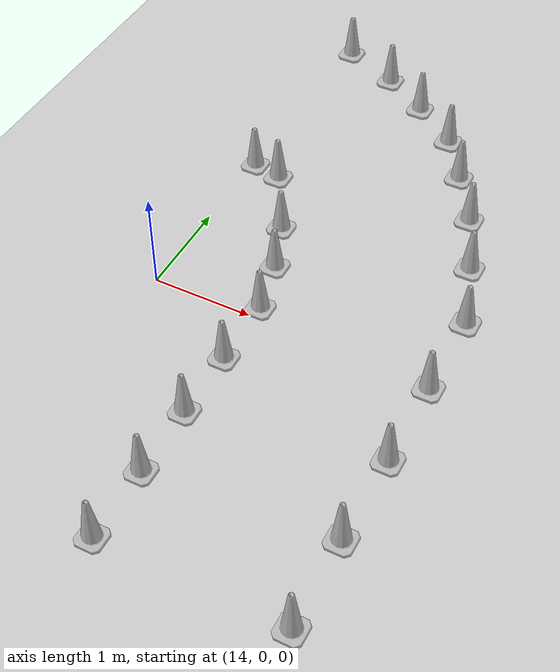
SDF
<sdf version="1.7">
 <world name="default">
  <model name="Construction_Cone_b_22">
   <link name="link">
    <inertial>
     <inertia><ixx>1</ixx><ixy>0</ixy><ixz>0</ixz><iyy>1</iyy><iyz>0</iyz><izz>1</izz></inertia>
     <mass>1</mass>
    </inertial>
    <visual name="visual">
     <geometry>
      <mesh><scale>4.9 4.9 4.5</scale><uri>./construction_cone/meshes/construction_cone_b.dae</uri></mesh>
     </geometry>
     <material><shader type="pixel"/></material>
    </visual>
    <collision name="collision">
     <geometry>
      <mesh><uri>./construction_cone/meshes/construction_cone_b.dae</uri><scale>4.9 4.9 4.5</scale></mesh>
     </geometry>
     <surface>
      <friction>
       <ode><mu>1</mu><mu2>1</mu2><fdir1>0 0 0</fdir1><slip1>0</slip1><slip2>0</slip2></ode>
       <torsional>
        <coefficient>1</coefficient>
        <patch_radius>0</patch_radius>
        <surface_radius>0</surface_radius>
        <use_patch_radius>1</use_patch_radius>
        <ode><slip>0</slip></ode>
       </torsional>
      </friction>
      <bounce><restitution_coefficient>0</restitution_coefficient><threshold>1e+06</threshold></bounce>
      <contact>
       <collide_without_contact>0</collide_without_contact>
       <collide_without_contact_bitmask>1</collide_without_contact_bitmask>
       <collide_bitmask>1</collide_bitmask>
       <ode>
        <soft_cfm>0</soft_cfm>
        <soft_erp>0.2</soft_erp>
        <kp>1e+13</kp>
        <kd>1</kd>
        <max_vel>0.01</max_vel>
        <min_depth>0</min_depth>
       </ode>
       <bullet>
        <split_impulse>1</split_impulse>
        <split_impulse_penetration_threshold>-0.01</split_impulse_penetration_threshold>
        <soft_cfm>0</soft_cfm>
        <soft_erp>0.2</soft_erp>
        <kp>1e+13</kp>
        <kd>1</kd>
       </bullet>
      </contact>
     </surface>
    </collision>
   </link>
   <static>0</static>
   <pose>14.0938 1.79114 0.1 0 0 0</pose>
  </model>
  <model name="Construction_Cone_b_23">
   <link name="link">
    <inertial>
     <inertia><ixx>1</ixx><ixy>0</ixy><ixz>0</ixz><iyy>1</iyy><iyz>0</iyz><izz>1</izz></inertia>
     <mass>1</mass>
    </inertial>
    <visual name="visual">
     <geometry>
      <mesh><scale>4.9 4.9 4.5</scale><uri>./construction_cone/meshes/construction_cone_b.dae</uri></mesh>
     </geometry>
     <material><shader type="pixel"/></material>
    </visual>
    <collision name="collision">
     <geometry>
      <mesh><uri>./construction_cone/meshes/construction_cone_b.dae</uri><scale>4.9 4.9 4.5</scale></mesh>
     </geometry>
     <surface>
      <friction>
       <ode><mu>1</mu><mu2>1</mu2><fdir1>0 0 0</fdir1><slip1>0</slip1><slip2>0</slip2></ode>
       <torsional>
        <coefficient>1</coefficient>
        <patch_radius>0</patch_radius>
        <surface_radius>0</surface_radius>
        <use_patch_radius>1</use_patch_radius>
        <ode><slip>0</slip></ode>
       </torsional>
      </friction>
      <bounce><restitution_coefficient>0</restitution_coefficient><threshold>1e+06</threshold></bounce>
      <contact>
       <collide_without_contact>0</collide_without_contact>
       <collide_without_contact_bitmask>1</collide_without_contact_bitmask>
       <collide_bitmask>1</collide_bitmask>
       <ode>
        <soft_cfm>0</soft_cfm>
        <soft_erp>0.2</soft_erp>
        <kp>1e+13</kp>
        <kd>1</kd>
        <max_vel>0.01</max_vel>
        <min_depth>0</min_depth>
       </ode>
       <bullet>
        <split_impulse>1</split_impulse>
        <split_impulse_penetration_threshold>-0.01</split_impulse_penetration_threshold>
        <soft_cfm>0</soft_cfm>
        <soft_erp>0.2</soft_erp>
        <kp>1e+13</kp>
        <kd>1</kd>
       </bullet>
      </contact>
     </surface>
    </collision>
   </link>
   <static>0</static>
   <pose>14.7718 1.07394 0.1 0 0 0</pose>
  </model>
  <model name="Construction_Cone_b_24">
   <link name="link">
    <inertial>
     <inertia><ixx>1</ixx><ixy>0</ixy><ixz>0</ixz><iyy>1</iyy><iyz>0</iyz><izz>1</izz></inertia>
     <mass>1</mass>
    </inertial>
    <visual name="visual">
     <geometry>
      <mesh><scale>4.9 4.9 4.5</scale><uri>./construction_cone/meshes/construction_cone_b.dae</uri></mesh>
     </geometry>
     <material><shader type="pixel"/></material>
    </visual>
    <collision name="collision">
     <geometry>
      <mesh><uri>./construction_cone/meshes/construction_cone_b.dae</uri><scale>4.9 4.9 4.5</scale></mesh>
     </geometry>
     <surface>
      <friction>
       <ode><mu>1</mu><mu2>1</mu2><fdir1>0 0 0</fdir1><slip1>0</slip1><slip2>0</slip2></ode>
       <torsional>
        <coefficient>1</coefficient>
        <patch_radius>0</patch_radius>
        <surface_radius>0</surface_radius>
        <use_patch_radius>1</use_patch_radius>
        <ode><slip>0</slip></ode>
       </torsional>
      </friction>
      <bounce><restitution_coefficient>0</restitution_coefficient><threshold>1e+06</threshold></bounce>
      <contact>
       <collide_without_contact>0</collide_without_contact>
       <collide_without_contact_bitmask>1</collide_without_contact_bitmask>
       <collide_bitmask>1</collide_bitmask>
       <ode>
        <soft_cfm>0</soft_cfm>
        <soft_erp>0.2</soft_erp>
        <kp>1e+13</kp>
        <kd>1</kd>
        <max_vel>0.01</max_vel>
        <min_depth>0</min_depth>
       </ode>
       <bullet>
        <split_impulse>1</split_impulse>
        <split_impulse_penetration_threshold>-0.01</split_impulse_penetration_threshold>
        <soft_cfm>0</soft_cfm>
        <soft_erp>0.2</soft_erp>
        <kp>1e+13</kp>
        <kd>1</kd>
       </bullet>
      </contact>
     </surface>
    </collision>
   </link>
   <static>0</static>
   <pose>14.9668 0.57247 0.1 0 0 0</pose>
  </model>
  <model name="Construction_Cone_b_25">
   <link name="link">
    <inertial>
     <inertia><ixx>1</ixx><ixy>0</ixy><ixz>0</ixz><iyy>1</iyy><iyz>0</iyz><izz>1</izz></inertia>
     <mass>1</mass>
    </inertial>
    <visual name="visual">
     <geometry>
      <mesh><scale>4.9 4.9 4.5</scale><uri>./construction_cone/meshes/construction_cone_b.dae</uri></mesh>
     </geometry>
     <material><shader type="pixel"/></material>
    </visual>
    <collision name="collision">
     <geometry>
      <mesh><uri>./construction_cone/meshes/construction_cone_b.dae</uri><scale>4.9 4.9 4.5</scale></mesh>
     </geometry>
     <surface>
      <friction>
       <ode><mu>1</mu><mu2>1</mu2><fdir1>0 0 0</fdir1><slip1>0</slip1><slip2>0</slip2></ode>
       <torsional>
        <coefficient>1</coefficient>
        <patch_radius>0</patch_radius>
        <surface_radius>0</surface_radius>
        <use_patch_radius>1</use_patch_radius>
        <ode><slip>0</slip></ode>
       </torsional>
      </friction>
      <bounce><restitution_coefficient>0</restitution_coefficient><threshold>1e+06</threshold></bounce>
      <contact>
       <collide_without_contact>0</collide_without_contact>
       <collide_without_contact_bitmask>1</collide_without_contact_bitmask>
       <collide_bitmask>1</collide_bitmask>
       <ode>
        <soft_cfm>0</soft_cfm>
        <soft_erp>0.2</soft_erp>
        <kp>1e+13</kp>
        <kd>1</kd>
        <max_vel>0.01</max_vel>
        <min_depth>0</min_depth>
       </ode>
       <bullet>
        <split_impulse>1</split_impulse>
        <split_impulse_penetration_threshold>-0.01</split_impulse_penetration_threshold>
        <soft_cfm>0</soft_cfm>
        <soft_erp>0.2</soft_erp>
        <kp>1e+13</kp>
        <kd>1</kd>
       </bullet>
      </contact>
     </surface>
    </collision>
   </link>
   <static>0</static>
   <pose>15.0998 0.038206 0.1 0 0 0</pose>
  </model>
  <model name="Construction_Cone_b_26">
   <link name="link">
    <inertial>
     <inertia><ixx>1</ixx><ixy>0</ixy><ixz>0</ixz><iyy>1</iyy><iyz>0</iyz><izz>1</izz></inertia>
     <mass>1</mass>
    </inertial>
    <visual name="visual">
     <geometry>
      <mesh><scale>4.9 4.9 4.5</scale><uri>./construction_cone/meshes/construction_cone_b.dae</uri></mesh>
     </geometry>
     <material><shader type="pixel"/></material>
    </visual>
    <collision name="collision">
     <geometry>
      <mesh><uri>./construction_cone/meshes/construction_cone_b.dae</uri><scale>4.9 4.9 4.5</scale></mesh>
     </geometry>
     <surface>
      <friction>
       <ode><mu>1</mu><mu2>1</mu2><fdir1>0 0 0</fdir1><slip1>0</slip1><slip2>0</slip2></ode>
       <torsional>
        <coefficient>1</coefficient>
        <patch_radius>0</patch_radius>
        <surface_radius>0</surface_radius>
        <use_patch_radius>1</use_patch_radius>
        <ode><slip>0</slip></ode>
       </torsional>
      </friction>
      <bounce><restitution_coefficient>0</restitution_coefficient><threshold>1e+06</threshold></bounce>
      <contact>
       <collide_without_contact>0</collide_without_contact>
       <collide_without_contact_bitmask>1</collide_without_contact_bitmask>
       <collide_bitmask>1</collide_bitmask>
       <ode>
        <soft_cfm>0</soft_cfm>
        <soft_erp>0.2</soft_erp>
        <kp>1e+13</kp>
        <kd>1</kd>
        <max_vel>0.01</max_vel>
        <min_depth>0</min_depth>
       </ode>
       <bullet>
        <split_impulse>1</split_impulse>
        <split_impulse_penetration_threshold>-0.01</split_impulse_penetration_threshold>
        <soft_cfm>0</soft_cfm>
        <soft_erp>0.2</soft_erp>
        <kp>1e+13</kp>
        <kd>1</kd>
       </bullet>
      </contact>
     </surface>
    </collision>
   </link>
   <static>0</static>
   <pose>15.1026 -0.643535 0.1 0 0 0</pose>
  </model>
  <model name="Construction_Cone_b_27">
   <link name="link">
    <inertial>
     <inertia><ixx>1</ixx><ixy>0</ixy><ixz>0</ixz><iyy>1</iyy><iyz>0</iyz><izz>1</izz></inertia>
     <mass>1</mass>
    </inertial>
    <visual name="visual">
     <geometry>
      <mesh><scale>4.9 4.9 4.5</scale><uri>./construction_cone/meshes/construction_cone_b.dae</uri></mesh>
     </geometry>
     <material><shader type="pixel"/></material>
    </visual>
    <collision name="collision">
     <geometry>
      <mesh><uri>./construction_cone/meshes/construction_cone_b.dae</uri><scale>4.9 4.9 4.5</scale></mesh>
     </geometry>
     <surface>
      <friction>
       <ode><mu>1</mu><mu2>1</mu2><fdir1>0 0 0</fdir1><slip1>0</slip1><slip2>0</slip2></ode>
       <torsional>
        <coefficient>1</coefficient>
        <patch_radius>0</patch_radius>
        <surface_radius>0</surface_radius>
        <use_patch_radius>1</use_patch_radius>
        <ode><slip>0</slip></ode>
       </torsional>
      </friction>
      <bounce><restitution_coefficient>0</restitution_coefficient><threshold>1e+06</threshold></bounce>
      <contact>
       <collide_without_contact>0</collide_without_contact>
       <collide_without_contact_bitmask>1</collide_without_contact_bitmask>
       <collide_bitmask>1</collide_bitmask>
       <ode>
        <soft_cfm>0</soft_cfm>
        <soft_erp>0.2</soft_erp>
        <kp>1e+13</kp>
        <kd>1</kd>
        <max_vel>0.01</max_vel>
        <min_depth>0</min_depth>
       </ode>
       <bullet>
        <split_impulse>1</split_impulse>
        <split_impulse_penetration_threshold>-0.01</split_impulse_penetration_threshold>
        <soft_cfm>0</soft_cfm>
        <soft_erp>0.2</soft_erp>
        <kp>1e+13</kp>
        <kd>1</kd>
       </bullet>
      </contact>
     </surface>
    </collision>
   </link>
   <static>0</static>
   <pose>15.1023 -1.32146 0.1 0 0 0</pose>
  </model>
  <model name="Construction_Cone_b_28">
   <link name="link">
    <inertial>
     <inertia><ixx>1</ixx><ixy>0</ixy><ixz>0</ixz><iyy>1</iyy><iyz>0</iyz><izz>1</izz></inertia>
     <mass>1</mass>
    </inertial>
    <visual name="visual">
     <geometry>
      <mesh><scale>4.9 4.9 4.5</scale><uri>./construction_cone/meshes/construction_cone_b.dae</uri></mesh>
     </geometry>
     <material><shader type="pixel"/></material>
    </visual>
    <collision name="collision">
     <geometry>
      <mesh><uri>./construction_cone/meshes/construction_cone_b.dae</uri><scale>4.9 4.9 4.5</scale></mesh>
     </geometry>
     <surface>
      <friction>
       <ode><mu>1</mu><mu2>1</mu2><fdir1>0 0 0</fdir1><slip1>0</slip1><slip2>0</slip2></ode>
       <torsional>
        <coefficient>1</coefficient>
        <patch_radius>0</patch_radius>
        <surface_radius>0</surface_radius>
        <use_patch_radius>1</use_patch_radius>
        <ode><slip>0</slip></ode>
       </torsional>
      </friction>
      <bounce><restitution_coefficient>0</restitution_coefficient><threshold>1e+06</threshold></bounce>
      <contact>
       <collide_without_contact>0</collide_without_contact>
       <collide_without_contact_bitmask>1</collide_without_contact_bitmask>
       <collide_bitmask>1</collide_bitmask>
       <ode>
        <soft_cfm>0</soft_cfm>
        <soft_erp>0.2</soft_erp>
        <kp>1e+13</kp>
        <kd>1</kd>
        <max_vel>0.01</max_vel>
        <min_depth>0</min_depth>
       </ode>
       <bullet>
        <split_impulse>1</split_impulse>
        <split_impulse_penetration_threshold>-0.01</split_impulse_penetration_threshold>
        <soft_cfm>0</soft_cfm>
        <soft_erp>0.2</soft_erp>
        <kp>1e+13</kp>
        <kd>1</kd>
       </bullet>
      </contact>
     </surface>
    </collision>
   </link>
   <static>0</static>
   <pose>15.1065 -2.01601 0.1 0 0 0</pose>
  </model>
  <model name="Construction_Cone_y_20">
   <link name="link">
    <inertial>
     <pose>0 0 0.1 0 -0 0</pose>
     <inertia><ixx>1</ixx><ixy>0</ixy><ixz>0</ixz><iyy>1</iyy><iyz>0</iyz><izz>1</izz></inertia>
     <mass>1</mass>
    </inertial>
    <pose>0 0 0.1 0 -0 0</pose>
    <visual name="visual">
     <geometry>
      <mesh><scale>4.9 4.9 4.5</scale><uri>./construction_cone/meshes/construction_cone_b.dae</uri></mesh>
     </geometry>
     <material><shader type="pixel"/></material>
     <pose>0 0 0.1 0 -0 0</pose>
    </visual>
    <collision name="collision">
     <pose>0 0 0.1 0 -0 0</pose>
     <geometry>
      <mesh><uri>./construction_cone/meshes/construction_cone_b.dae</uri><scale>4.9 4.9 4.5</scale></mesh>
     </geometry>
     <surface>
      <friction>
       <ode><mu>1</mu><mu2>1</mu2><fdir1>0 0 0</fdir1><slip1>0</slip1><slip2>0</slip2></ode>
       <torsional>
        <coefficient>1</coefficient>
        <patch_radius>0</patch_radius>
        <surface_radius>0</surface_radius>
        <use_patch_radius>1</use_patch_radius>
        <ode><slip>0</slip></ode>
       </torsional>
      </friction>
      <bounce><restitution_coefficient>0</restitution_coefficient><threshold>1e+06</threshold></bounce>
      <contact>
       <collide_without_contact>0</collide_without_contact>
       <collide_without_contact_bitmask>1</collide_without_contact_bitmask>
       <collide_bitmask>1</collide_bitmask>
       <ode>
        <soft_cfm>0</soft_cfm>
        <soft_erp>0.2</soft_erp>
        <kp>1e+13</kp>
        <kd>1</kd>
        <max_vel>0.01</max_vel>
        <min_depth>0</min_depth>
       </ode>
       <bullet>
        <split_impulse>1</split_impulse>
        <split_impulse_penetration_threshold>-0.01</split_impulse_penetration_threshold>
        <soft_cfm>0</soft_cfm>
        <soft_erp>0.2</soft_erp>
        <kp>1e+13</kp>
        <kd>1</kd>
       </bullet>
      </contact>
     </surface>
    </collision>
   </link>
   <static>0</static>
   <pose>14.5046 1.52039 0.1 0 0 0</pose>
  </model>
  <model name="Construction_Cone_y_22">
   <link name="link">
    <inertial>
     <pose>0 0 0.1 0 -0 0</pose>
     <inertia><ixx>1</ixx><ixy>0</ixy><ixz>0</ixz><iyy>1</iyy><iyz>0</iyz><izz>1</izz></inertia>
     <mass>1</mass>
    </inertial>
    <pose>0 0 0.1 0 -0 0</pose>
    <visual name="visual">
     <geometry>
      <mesh><scale>4.9 4.9 4.5</scale><uri>./construction_cone/meshes/construction_cone_y.dae</uri></mesh>
     </geometry>
     <material><shader type="pixel"/></material>
     <pose>0 0 0.1 0 -0 0</pose>
    </visual>
    <collision name="collision">
     <pose>0 0 0.1 0 -0 0</pose>
     <geometry>
      <mesh><uri>./construction_cone/meshes/construction_cone_y.dae</uri><scale>4.9 4.9 4.5</scale></mesh>
     </geometry>
     <surface>
      <friction>
       <ode><mu>1</mu><mu2>1</mu2><fdir1>0 0 0</fdir1><slip1>0</slip1><slip2>0</slip2></ode>
       <torsional>
        <coefficient>1</coefficient>
        <patch_radius>0</patch_radius>
        <surface_radius>0</surface_radius>
        <use_patch_radius>1</use_patch_radius>
        <ode><slip>0</slip></ode>
       </torsional>
      </friction>
      <bounce><restitution_coefficient>0</restitution_coefficient><threshold>1e+06</threshold></bounce>
      <contact>
       <collide_without_contact>0</collide_without_contact>
       <collide_without_contact_bitmask>1</collide_without_contact_bitmask>
       <collide_bitmask>1</collide_bitmask>
       <ode>
        <soft_cfm>0</soft_cfm>
        <soft_erp>0.2</soft_erp>
        <kp>1e+13</kp>
        <kd>1</kd>
        <max_vel>0.01</max_vel>
        <min_depth>0</min_depth>
       </ode>
       <bullet>
        <split_impulse>1</split_impulse>
        <split_impulse_penetration_threshold>-0.01</split_impulse_penetration_threshold>
        <soft_cfm>0</soft_cfm>
        <soft_erp>0.2</soft_erp>
        <kp>1e+13</kp>
        <kd>1</kd>
       </bullet>
      </contact>
     </surface>
    </collision>
   </link>
   <static>0</static>
   <pose>14.256 3.73519 0.1 0 0 0</pose>
  </model>
  <model name="Construction_Cone_y_23">
   <link name="link">
    <inertial>
     <pose>0 0 0.1 0 -0 0</pose>
     <inertia><ixx>1</ixx><ixy>0</ixy><ixz>0</ixz><iyy>1</iyy><iyz>0</iyz><izz>1</izz></inertia>
     <mass>1</mass>
    </inertial>
    <pose>0 0 0.1 0 -0 0</pose>
    <visual name="visual">
     <geometry>
      <mesh><scale>4.9 4.9 4.5</scale><uri>./construction_cone/meshes/construction_cone_y.dae</uri></mesh>
     </geometry>
     <material><shader type="pixel"/></material>
     <pose>0 0 0.1 0 -0 0</pose>
    </visual>
    <collision name="collision">
     <pose>0 0 0.1 0 -0 0</pose>
     <geometry>
      <mesh><uri>./construction_cone/meshes/construction_cone_y.dae</uri><scale>4.9 4.9 4.5</scale></mesh>
     </geometry>
     <surface>
      <friction>
       <ode><mu>1</mu><mu2>1</mu2><fdir1>0 0 0</fdir1><slip1>0</slip1><slip2>0</slip2></ode>
       <torsional>
        <coefficient>1</coefficient>
        <patch_radius>0</patch_radius>
        <surface_radius>0</surface_radius>
        <use_patch_radius>1</use_patch_radius>
        <ode><slip>0</slip></ode>
       </torsional>
      </friction>
      <bounce><restitution_coefficient>0</restitution_coefficient><threshold>1e+06</threshold></bounce>
      <contact>
       <collide_without_contact>0</collide_without_contact>
       <collide_without_contact_bitmask>1</collide_without_contact_bitmask>
       <collide_bitmask>1</collide_bitmask>
       <ode>
        <soft_cfm>0</soft_cfm>
        <soft_erp>0.2</soft_erp>
        <kp>1e+13</kp>
        <kd>1</kd>
        <max_vel>0.01</max_vel>
        <min_depth>0</min_depth>
       </ode>
       <bullet>
        <split_impulse>1</split_impulse>
        <split_impulse_penetration_threshold>-0.01</split_impulse_penetration_threshold>
        <soft_cfm>0</soft_cfm>
        <soft_erp>0.2</soft_erp>
        <kp>1e+13</kp>
        <kd>1</kd>
       </bullet>
      </contact>
     </surface>
    </collision>
   </link>
   <static>0</static>
   <pose>14.8435 3.47262 0.1 0 0 0</pose>
  </model>
  <model name="Construction_Cone_y_26">
   <link name="link">
    <inertial>
     <pose>0 0 0.1 0 -0 0</pose>
     <inertia><ixx>1</ixx><ixy>0</ixy><ixz>0</ixz><iyy>1</iyy><iyz>0</iyz><izz>1</izz></inertia>
     <mass>1</mass>
    </inertial>
    <pose>0 0 0.1 0 -0 0</pose>
    <visual name="visual">
     <geometry>
      <mesh><scale>4.9 4.9 4.5</scale><uri>./construction_cone/meshes/construction_cone_y.dae</uri></mesh>
     </geometry>
     <material><shader type="pixel"/></material>
     <pose>0 0 0.1 0 -0 0</pose>
    </visual>
    <collision name="collision">
     <pose>0 0 0.1 0 -0 0</pose>
     <geometry>
      <mesh><uri>./construction_cone/meshes/construction_cone_y.dae</uri><scale>4.9 4.9 4.5</scale></mesh>
     </geometry>
     <surface>
      <friction>
       <ode><mu>1</mu><mu2>1</mu2><fdir1>0 0 0</fdir1><slip1>0</slip1><slip2>0</slip2></ode>
       <torsional>
        <coefficient>1</coefficient>
        <patch_radius>0</patch_radius>
        <surface_radius>0</surface_radius>
        <use_patch_radius>1</use_patch_radius>
        <ode><slip>0</slip></ode>
       </torsional>
      </friction>
      <bounce><restitution_coefficient>0</restitution_coefficient><threshold>1e+06</threshold></bounce>
      <contact>
       <collide_without_contact>0</collide_without_contact>
       <collide_without_contact_bitmask>1</collide_without_contact_bitmask>
       <collide_bitmask>1</collide_bitmask>
       <ode>
        <soft_cfm>0</soft_cfm>
        <soft_erp>0.2</soft_erp>
        <kp>1e+13</kp>
        <kd>1</kd>
        <max_vel>0.01</max_vel>
        <min_depth>0</min_depth>
       </ode>
       <bullet>
        <split_impulse>1</split_impulse>
        <split_impulse_penetration_threshold>-0.01</split_impulse_penetration_threshold>
        <soft_cfm>0</soft_cfm>
        <soft_erp>0.2</soft_erp>
        <kp>1e+13</kp>
        <kd>1</kd>
       </bullet>
      </contact>
     </surface>
    </collision>
   </link>
   <static>0</static>
   <pose>16.1063 2.32555 0.1 0 0 0</pose>
  </model>
  <model name="Construction_Cone_y_27">
   <link name="link">
    <inertial>
     <pose>0 0 0.1 0 -0 0</pose>
     <inertia><ixx>1</ixx><ixy>0</ixy><ixz>0</ixz><iyy>1</iyy><iyz>0</iyz><izz>1</izz></inertia>
     <mass>1</mass>
    </inertial>
    <pose>0 0 0.1 0 -0 0</pose>
    <visual name="visual">
     <geometry>
      <mesh><scale>4.9 4.9 4.5</scale><uri>./construction_cone/meshes/construction_cone_y.dae</uri></mesh>
     </geometry>
     <material><shader type="pixel"/></material>
     <pose>0 0 0.1 0 -0 0</pose>
    </visual>
    <collision name="collision">
     <pose>0 0 0.1 0 -0 0</pose>
     <geometry>
      <mesh><uri>./construction_cone/meshes/construction_cone_y.dae</uri><scale>4.9 4.9 4.5</scale></mesh>
     </geometry>
     <surface>
      <friction>
       <ode><mu>1</mu><mu2>1</mu2><fdir1>0 0 0</fdir1><slip1>0</slip1><slip2>0</slip2></ode>
       <torsional>
        <coefficient>1</coefficient>
        <patch_radius>0</patch_radius>
        <surface_radius>0</surface_radius>
        <use_patch_radius>1</use_patch_radius>
        <ode><slip>0</slip></ode>
       </torsional>
      </friction>
      <bounce><restitution_coefficient>0</restitution_coefficient><threshold>1e+06</threshold></bounce>
      <contact>
       <collide_without_contact>0</collide_without_contact>
       <collide_without_contact_bitmask>1</collide_without_contact_bitmask>
       <collide_bitmask>1</collide_bitmask>
       <ode>
        <soft_cfm>0</soft_cfm>
        <soft_erp>0.2</soft_erp>
        <kp>1e+13</kp>
        <kd>1</kd>
        <max_vel>0.01</max_vel>
        <min_depth>0</min_depth>
       </ode>
       <bullet>
        <split_impulse>1</split_impulse>
        <split_impulse_penetration_threshold>-0.01</split_impulse_penetration_threshold>
        <soft_cfm>0</soft_cfm>
        <soft_erp>0.2</soft_erp>
        <kp>1e+13</kp>
        <kd>1</kd>
       </bullet>
      </contact>
     </surface>
    </collision>
   </link>
   <static>0</static>
   <pose>16.4274 1.79772 0.1 0 0 0</pose>
  </model>
  <model name="Construction_Cone_y_28">
   <link name="link">
    <inertial>
     <pose>0 0 0.1 0 -0 0</pose>
     <inertia><ixx>1</ixx><ixy>0</ixy><ixz>0</ixz><iyy>1</iyy><iyz>0</iyz><izz>1</izz></inertia>
     <mass>1</mass>
    </inertial>
    <pose>0 0 0.1 0 -0 0</pose>
    <visual name="visual">
     <geometry>
      <mesh><scale>4.9 4.9 4.5</scale><uri>./construction_cone/meshes/construction_cone_y.dae</uri></mesh>
     </geometry>
     <material><shader type="pixel"/></material>
     <pose>0 0 0.1 0 -0 0</pose>
    </visual>
    <collision name="collision">
     <pose>0 0 0.1 0 -0 0</pose>
     <geometry>
      <mesh><uri>./construction_cone/meshes/construction_cone_y.dae</uri><scale>4.9 4.9 4.5</scale></mesh>
     </geometry>
     <surface>
      <friction>
       <ode><mu>1</mu><mu2>1</mu2><fdir1>0 0 0</fdir1><slip1>0</slip1><slip2>0</slip2></ode>
       <torsional>
        <coefficient>1</coefficient>
        <patch_radius>0</patch_radius>
        <surface_radius>0</surface_radius>
        <use_patch_radius>1</use_patch_radius>
        <ode><slip>0</slip></ode>
       </torsional>
      </friction>
      <bounce><restitution_coefficient>0</restitution_coefficient><threshold>1e+06</threshold></bounce>
      <contact>
       <collide_without_contact>0</collide_without_contact>
       <collide_without_contact_bitmask>1</collide_without_contact_bitmask>
       <collide_bitmask>1</collide_bitmask>
       <ode>
        <soft_cfm>0</soft_cfm>
        <soft_erp>0.2</soft_erp>
        <kp>1e+13</kp>
        <kd>1</kd>
        <max_vel>0.01</max_vel>
        <min_depth>0</min_depth>
       </ode>
       <bullet>
        <split_impulse>1</split_impulse>
        <split_impulse_penetration_threshold>-0.01</split_impulse_penetration_threshold>
        <soft_cfm>0</soft_cfm>
        <soft_erp>0.2</soft_erp>
        <kp>1e+13</kp>
        <kd>1</kd>
       </bullet>
      </contact>
     </surface>
    </collision>
   </link>
   <static>0</static>
   <pose>16.6778 1.18507 0.1 0 0 0</pose>
  </model>
  <model name="Construction_Cone_y_29">
   <link name="link">
    <inertial>
     <pose>0 0 0.1 0 -0 0</pose>
     <inertia><ixx>1</ixx><ixy>0</ixy><ixz>0</ixz><iyy>1</iyy><iyz>0</iyz><izz>1</izz></inertia>
     <mass>1</mass>
    </inertial>
    <pose>0 0 0.1 0 -0 0</pose>
    <visual name="visual">
     <geometry>
      <mesh><scale>4.9 4.9 4.5</scale><uri>./construction_cone/meshes/construction_cone_y.dae</uri></mesh>
     </geometry>
     <material><shader type="pixel"/></material>
     <pose>0 0 0.1 0 -0 0</pose>
    </visual>
    <collision name="collision">
     <pose>0 0 0.1 0 -0 0</pose>
     <geometry>
      <mesh><uri>./construction_cone/meshes/construction_cone_y.dae</uri><scale>4.9 4.9 4.5</scale></mesh>
     </geometry>
     <surface>
      <friction>
       <ode><mu>1</mu><mu2>1</mu2><fdir1>0 0 0</fdir1><slip1>0</slip1><slip2>0</slip2></ode>
       <torsional>
        <coefficient>1</coefficient>
        <patch_radius>0</patch_radius>
        <surface_radius>0</surface_radius>
        <use_patch_radius>1</use_patch_radius>
        <ode><slip>0</slip></ode>
       </torsional>
      </friction>
      <bounce><restitution_coefficient>0</restitution_coefficient><threshold>1e+06</threshold></bounce>
      <contact>
       <collide_without_contact>0</collide_without_contact>
       <collide_without_contact_bitmask>1</collide_without_contact_bitmask>
       <collide_bitmask>1</collide_bitmask>
       <ode>
        <soft_cfm>0</soft_cfm>
        <soft_erp>0.2</soft_erp>
        <kp>1e+13</kp>
        <kd>1</kd>
        <max_vel>0.01</max_vel>
        <min_depth>0</min_depth>
       </ode>
       <bullet>
        <split_impulse>1</split_impulse>
        <split_impulse_penetration_threshold>-0.01</split_impulse_penetration_threshold>
        <soft_cfm>0</soft_cfm>
        <soft_erp>0.2</soft_erp>
        <kp>1e+13</kp>
        <kd>1</kd>
       </bullet>
      </contact>
     </surface>
    </collision>
   </link>
   <static>0</static>
   <pose>16.902 0.532254 0.1 0 0 0</pose>
  </model>
  <model name="Construction_Cone_y_30">
   <link name="link">
    <inertial>
     <pose>0 0 0.1 0 -0 0</pose>
     <inertia><ixx>1</ixx><ixy>0</ixy><ixz>0</ixz><iyy>1</iyy><iyz>0</iyz><izz>1</izz></inertia>
     <mass>1</mass>
    </inertial>
    <pose>0 0 0.1 0 -0 0</pose>
    <visual name="visual">
     <geometry>
      <mesh><scale>4.9 4.9 4.5</scale><uri>./construction_cone/meshes/construction_cone_y.dae</uri></mesh>
     </geometry>
     <material><shader type="pixel"/></material>
     <pose>0 0 0.1 0 -0 0</pose>
    </visual>
    <collision name="collision">
     <pose>0 0 0.1 0 -0 0</pose>
     <geometry>
      <mesh><uri>./construction_cone/meshes/construction_cone_y.dae</uri><scale>4.9 4.9 4.5</scale></mesh>
     </geometry>
     <surface>
      <friction>
       <ode><mu>1</mu><mu2>1</mu2><fdir1>0 0 0</fdir1><slip1>0</slip1><slip2>0</slip2></ode>
       <torsional>
        <coefficient>1</coefficient>
        <patch_radius>0</patch_radius>
        <surface_radius>0</surface_radius>
        <use_patch_radius>1</use_patch_radius>
        <ode><slip>0</slip></ode>
       </torsional>
      </friction>
      <bounce><restitution_coefficient>0</restitution_coefficient><threshold>1e+06</threshold></bounce>
      <contact>
       <collide_without_contact>0</collide_without_contact>
       <collide_without_contact_bitmask>1</collide_without_contact_bitmask>
       <collide_bitmask>1</collide_bitmask>
       <ode>
        <soft_cfm>0</soft_cfm>
        <soft_erp>0.2</soft_erp>
        <kp>1e+13</kp>
        <kd>1</kd>
        <max_vel>0.01</max_vel>
        <min_depth>0</min_depth>
       </ode>
       <bullet>
        <split_impulse>1</split_impulse>
        <split_impulse_penetration_threshold>-0.01</split_impulse_penetration_threshold>
        <soft_cfm>0</soft_cfm>
        <soft_erp>0.2</soft_erp>
        <kp>1e+13</kp>
        <kd>1</kd>
       </bullet>
      </contact>
     </surface>
    </collision>
   </link>
   <static>0</static>
   <pose>16.9048 -0.304297 0.1 0 0 0</pose>
  </model>
  <model name="Construction_Cone_y_31">
   <link name="link">
    <inertial>
     <pose>0 0 0.1 0 -0 0</pose>
     <inertia><ixx>1</ixx><ixy>0</ixy><ixz>0</ixz><iyy>1</iyy><iyz>0</iyz><izz>1</izz></inertia>
     <mass>1</mass>
    </inertial>
    <pose>0 0 0.1 0 -0 0</pose>
    <visual name="visual">
     <geometry>
      <mesh><scale>4.9 4.9 4.5</scale><uri>./construction_cone/meshes/construction_cone_y.dae</uri></mesh>
     </geometry>
     <material><shader type="pixel"/></material>
     <pose>0 0 0.1 0 -0 0</pose>
    </visual>
    <collision name="collision">
     <pose>0 0 0.1 0 -0 0</pose>
     <geometry>
      <mesh><uri>./construction_cone/meshes/construction_cone_y.dae</uri><scale>4.9 4.9 4.5</scale></mesh>
     </geometry>
     <surface>
      <friction>
       <ode><mu>1</mu><mu2>1</mu2><fdir1>0 0 0</fdir1><slip1>0</slip1><slip2>0</slip2></ode>
       <torsional>
        <coefficient>1</coefficient>
        <patch_radius>0</patch_radius>
        <surface_radius>0</surface_radius>
        <use_patch_radius>1</use_patch_radius>
        <ode><slip>0</slip></ode>
       </torsional>
      </friction>
      <bounce><restitution_coefficient>0</restitution_coefficient><threshold>1e+06</threshold></bounce>
      <contact>
       <collide_without_contact>0</collide_without_contact>
       <collide_without_contact_bitmask>1</collide_without_contact_bitmask>
       <collide_bitmask>1</collide_bitmask>
       <ode>
        <soft_cfm>0</soft_cfm>
        <soft_erp>0.2</soft_erp>
        <kp>1e+13</kp>
        <kd>1</kd>
        <max_vel>0.01</max_vel>
        <min_depth>0</min_depth>
       </ode>
       <bullet>
        <split_impulse>1</split_impulse>
        <split_impulse_penetration_threshold>-0.01</split_impulse_penetration_threshold>
        <soft_cfm>0</soft_cfm>
        <soft_erp>0.2</soft_erp>
        <kp>1e+13</kp>
        <kd>1</kd>
       </bullet>
      </contact>
     </surface>
    </collision>
   </link>
   <static>0</static>
   <pose>16.9102 -1.14241 0.1 0 0 0</pose>
  </model>
  <model name="Construction_Cone_y_32">
   <link name="link">
    <inertial>
     <pose>0 0 0.1 0 -0 0</pose>
     <inertia><ixx>1</ixx><ixy>0</ixy><ixz>0</ixz><iyy>1</iyy><iyz>0</iyz><izz>1</izz></inertia>
     <mass>1</mass>
    </inertial>
    <pose>0 0 0.1 0 -0 0</pose>
    <visual name="visual">
     <geometry>
      <mesh><scale>4.9 4.9 4.5</scale><uri>./construction_cone/meshes/construction_cone_y.dae</uri></mesh>
     </geometry>
     <material><shader type="pixel"/></material>
     <pose>0 0 0.1 0 -0 0</pose>
    </visual>
    <collision name="collision">
     <pose>0 0 0.1 0 -0 0</pose>
     <geometry>
      <mesh><uri>./construction_cone/meshes/construction_cone_y.dae</uri><scale>4.9 4.9 4.5</scale></mesh>
     </geometry>
     <surface>
      <friction>
       <ode><mu>1</mu><mu2>1</mu2><fdir1>0 0 0</fdir1><slip1>0</slip1><slip2>0</slip2></ode>
       <torsional>
        <coefficient>1</coefficient>
        <patch_radius>0</patch_radius>
        <surface_radius>0</surface_radius>
        <use_patch_radius>1</use_patch_radius>
        <ode><slip>0</slip></ode>
       </torsional>
      </friction>
      <bounce><restitution_coefficient>0</restitution_coefficient><threshold>1e+06</threshold></bounce>
      <contact>
       <collide_without_contact>0</collide_without_contact>
       <collide_without_contact_bitmask>1</collide_without_contact_bitmask>
       <collide_bitmask>1</collide_bitmask>
       <ode>
        <soft_cfm>0</soft_cfm>
        <soft_erp>0.2</soft_erp>
        <kp>1e+13</kp>
        <kd>1</kd>
        <max_vel>0.01</max_vel>
        <min_depth>0</min_depth>
       </ode>
       <bullet>
        <split_impulse>1</split_impulse>
        <split_impulse_penetration_threshold>-0.01</split_impulse_penetration_threshold>
        <soft_cfm>0</soft_cfm>
        <soft_erp>0.2</soft_erp>
        <kp>1e+13</kp>
        <kd>1</kd>
       </bullet>
      </contact>
     </surface>
    </collision>
   </link>
   <static>0</static>
   <pose>16.9002 -1.98138 0.1 0 0 0</pose>
  </model>
  <model name="Construction_Cone_y_33">
   <link name="link">
    <inertial>
     <pose>0 0 0.1 0 -0 0</pose>
     <inertia><ixx>1</ixx><ixy>0</ixy><ixz>0</ixz><iyy>1</iyy><iyz>0</iyz><izz>1</izz></inertia>
     <mass>1</mass>
    </inertial>
    <pose>0 0 0.1 0 -0 0</pose>
    <visual name="visual">
     <geometry>
      <mesh><scale>4.9 4.9 4.5</scale><uri>./construction_cone/meshes/construction_cone_y.dae</uri></mesh>
     </geometry>
     <material><shader type="pixel"/></material>
     <pose>0 0 0.1 0 -0 0</pose>
    </visual>
    <collision name="collision">
     <pose>0 0 0.1 0 -0 0</pose>
     <geometry>
      <mesh><uri>./construction_cone/meshes/construction_cone_y.dae</uri><scale>4.9 4.9 4.5</scale></mesh>
     </geometry>
     <surface>
      <friction>
       <ode><mu>1</mu><mu2>1</mu2><fdir1>0 0 0</fdir1><slip1>0</slip1><slip2>0</slip2></ode>
       <torsional>
        <coefficient>1</coefficient>
        <patch_radius>0</patch_radius>
        <surface_radius>0</surface_radius>
        <use_patch_radius>1</use_patch_radius>
        <ode><slip>0</slip></ode>
       </torsional>
      </friction>
      <bounce><restitution_coefficient>0</restitution_coefficient><threshold>1e+06</threshold></bounce>
      <contact>
       <collide_without_contact>0</collide_without_contact>
       <collide_without_contact_bitmask>1</collide_without_contact_bitmask>
       <collide_bitmask>1</collide_bitmask>
       <ode>
        <soft_cfm>0</soft_cfm>
        <soft_erp>0.2</soft_erp>
        <kp>1e+13</kp>
        <kd>1</kd>
        <max_vel>0.01</max_vel>
        <min_depth>0</min_depth>
       </ode>
       <bullet>
        <split_impulse>1</split_impulse>
        <split_impulse_penetration_threshold>-0.01</split_impulse_penetration_threshold>
        <soft_cfm>0</soft_cfm>
        <soft_erp>0.2</soft_erp>
        <kp>1e+13</kp>
        <kd>1</kd>
       </bullet>
      </contact>
     </surface>
    </collision>
   </link>
   <static>0</static>
   <pose>16.9088 -2.81986 0.1 0 0 0</pose>
  </model>
  <model name="Construction_Cone_y_145">
   <link name="link">
    <inertial>
     <pose>0 0 0.1 0 -0 0</pose>
     <inertia><ixx>1</ixx><ixy>0</ixy><ixz>0</ixz><iyy>1</iyy><iyz>0</iyz><izz>1</izz></inertia>
     <mass>1</mass>
    </inertial>
    <pose>0 0 0.1 0 -0 0</pose>
    <visual name="visual">
     <geometry>
      <mesh><scale>4.9 4.9 4.5</scale><uri>./construction_cone/meshes/construction_cone_y.dae</uri></mesh>
     </geometry>
     <material><shader type="pixel"/></material>
     <pose>0 0 0.1 0 -0 0</pose>
    </visual>
    <collision name="collision">
     <pose>0 0 0.1 0 -0 0</pose>
     <geometry>
      <mesh><uri>./construction_cone/meshes/construction_cone_y.dae</uri><scale>4.9 4.9 4.5</scale></mesh>
     </geometry>
     <surface>
      <friction>
       <ode><mu>1</mu><mu2>1</mu2><fdir1>0 0 0</fdir1><slip1>0</slip1><slip2>0</slip2></ode>
       <torsional>
        <coefficient>1</coefficient>
        <patch_radius>0</patch_radius>
        <surface_radius>0</surface_radius>
        <use_patch_radius>1</use_patch_radius>
        <ode><slip>0</slip></ode>
       </torsional>
      </friction>
      <bounce><restitution_coefficient>0</restitution_coefficient><threshold>1e+06</threshold></bounce>
      <contact>
       <collide_without_contact>0</collide_without_contact>
       <collide_without_contact_bitmask>1</collide_without_contact_bitmask>
       <collide_bitmask>1</collide_bitmask>
       <ode>
        <soft_cfm>0</soft_cfm>
        <soft_erp>0.2</soft_erp>
        <kp>1e+13</kp>
        <kd>1</kd>
        <max_vel>0.01</max_vel>
        <min_depth>0</min_depth>
       </ode>
       <bullet>
        <split_impulse>1</split_impulse>
        <split_impulse_penetration_threshold>-0.01</split_impulse_penetration_threshold>
        <soft_cfm>0</soft_cfm>
        <soft_erp>0.2</soft_erp>
        <kp>1e+13</kp>
        <kd>1</kd>
       </bullet>
      </contact>
     </surface>
    </collision>
   </link>
   <static>0</static>
   <pose>15.3247 3.16501 0.1 0 0 0</pose>
  </model>
  <model name="Construction_Cone_y_146">
   <link name="link">
    <inertial>
     <pose>0 0 0.1 0 -0 0</pose>
     <inertia><ixx>1</ixx><ixy>0</ixy><ixz>0</ixz><iyy>1</iyy><iyz>0</iyz><izz>1</izz></inertia>
     <mass>1</mass>
    </inertial>
    <pose>0 0 0.1 0 -0 0</pose>
    <visual name="visual">
     <geometry>
      <mesh><scale>4.9 4.9 4.5</scale><uri>./construction_cone/meshes/construction_cone_y.dae</uri></mesh>
     </geometry>
     <material><shader type="pixel"/></material>
     <pose>0 0 0.1 0 -0 0</pose>
    </visual>
    <collision name="collision">
     <pose>0 0 0.1 0 -0 0</pose>
     <geometry>
      <mesh><uri>./construction_cone/meshes/construction_cone_y.dae</uri><scale>4.9 4.9 4.5</scale></mesh>
     </geometry>
     <surface>
      <friction>
       <ode><mu>1</mu><mu2>1</mu2><fdir1>0 0 0</fdir1><slip1>0</slip1><slip2>0</slip2></ode>
       <torsional>
        <coefficient>1</coefficient>
        <patch_radius>0</patch_radius>
        <surface_radius>0</surface_radius>
        <use_patch_radius>1</use_patch_radius>
        <ode><slip>0</slip></ode>
       </torsional>
      </friction>
      <bounce><restitution_coefficient>0</restitution_coefficient><threshold>1e+06</threshold></bounce>
      <contact>
       <collide_without_contact>0</collide_without_contact>
       <collide_without_contact_bitmask>1</collide_without_contact_bitmask>
       <collide_bitmask>1</collide_bitmask>
       <ode>
        <soft_cfm>0</soft_cfm>
        <soft_erp>0.2</soft_erp>
        <kp>1e+13</kp>
        <kd>1</kd>
        <max_vel>0.01</max_vel>
        <min_depth>0</min_depth>
       </ode>
       <bullet>
        <split_impulse>1</split_impulse>
        <split_impulse_penetration_threshold>-0.01</split_impulse_penetration_threshold>
        <soft_cfm>0</soft_cfm>
        <soft_erp>0.2</soft_erp>
        <kp>1e+13</kp>
        <kd>1</kd>
       </bullet>
      </contact>
     </surface>
    </collision>
   </link>
   <static>0</static>
   <pose>15.7957 2.80266 0.1 0 0 0</pose>
  </model>
  <model name="ground_plane">
   <static>1</static>
   <link name="link">
    <collision name="collision">
     <geometry><plane><normal>0 0 1</normal><size>100 100</size></plane></geometry>
     <surface>
      <contact><collide_bitmask>65535</collide_bitmask></contact>
      <friction><ode><mu>100</mu><mu2>50</mu2></ode></friction>
     </surface>
    </collision>
    <visual name="visual">
     <cast_shadows>0</cast_shadows>
     <geometry><plane><normal>0 0 1</normal><size>100 100</size></plane></geometry>
     <material>
      <script><uri>file://media/materials/scripts/gazebo.material</uri><name>Gazebo/Grey</name></script>
     </material>
    </visual>
   </link>
   <pose>0 0 -0.001 0 -0 0</pose>
  </model>
  <model name="Construction_Cone_b_29">
   <link name="link">
    <inertial>
     <inertia><ixx>1</ixx><ixy>0</ixy><ixz>0</ixz><iyy>1</iyy><iyz>0</iyz><izz>1</izz></inertia>
     <mass>1</mass>
    </inertial>
    <visual name="visual">
     <geometry>
      <mesh><scale>4.9 4.9 4.5</scale><uri>./construction_cone/meshes/construction_cone_b.dae</uri></mesh>
     </geometry>
     <material><shader type="pixel"/></material>
    </visual>
    <collision name="collision">
     <geometry>
      <mesh><uri>./construction_cone/meshes/construction_cone_b.dae</uri><scale>4.9 4.9 4.5</scale></mesh>
     </geometry>
     <surface>
      <friction>
       <ode><mu>1</mu><mu2>1</mu2><fdir1>0 0 0</fdir1><slip1>0</slip1><slip2>0</slip2></ode>
       <torsional>
        <coefficient>1</coefficient>
        <patch_radius>0</patch_radius>
        <surface_radius>0</surface_radius>
        <use_patch_radius>1</use_patch_radius>
        <ode><slip>0</slip></ode>
       </torsional>
      </friction>
      <bounce><restitution_coefficient>0</restitution_coefficient><threshold>1e+06</threshold></bounce>
      <contact>
       <collide_without_contact>0</collide_without_contact>
       <collide_without_contact_bitmask>1</collide_without_contact_bitmask>
       <collide_bitmask>1</collide_bitmask>
       <ode>
        <soft_cfm>0</soft_cfm>
        <soft_erp>0.2</soft_erp>
        <kp>1e+13</kp>
        <kd>1</kd>
        <max_vel>0.01</max_vel>
        <min_depth>0</min_depth>
       </ode>
       <bullet>
        <split_impulse>1</split_impulse>
        <split_impulse_penetration_threshold>-0.01</split_impulse_penetration_threshold>
        <soft_cfm>0</soft_cfm>
        <soft_erp>0.2</soft_erp>
        <kp>1e+13</kp>
        <kd>1</kd>
       </bullet>
      </contact>
     </surface>
    </collision>
   </link>
   <static>0</static>
   <pose>15.1027 -2.72745 0.1 0 0 0</pose>
  </model>
 </world>
</sdf>
